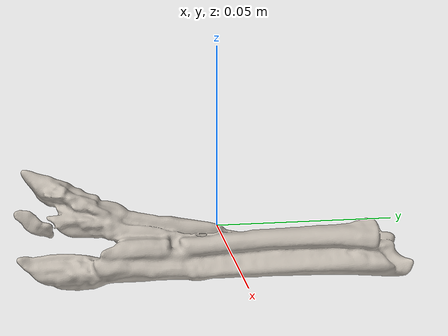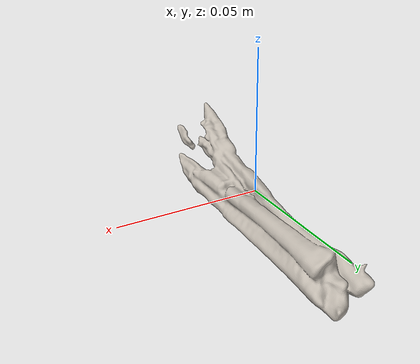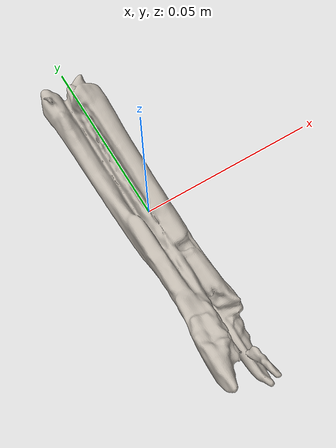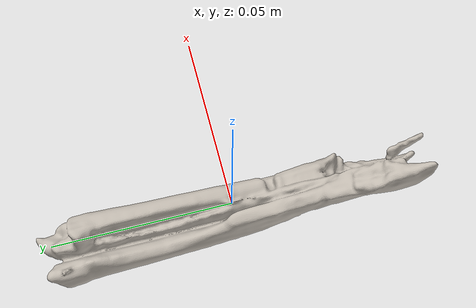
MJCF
<?xml version='1.0' encoding='utf-8'?>
<mujoco model="asparagus_1">
  <asset>
    <texture file="ceramic.png" name="tex-asparagus_1" type="2d" />
    <material name="asparagus_1" reflectance="0.5" texrepeat="1 1" texture="tex-asparagus_1" texuniform="false" />
    <mesh file="visual/model_normalized_0.obj" name="model_normalized_0_vis" scale="0.11000000000000001 0.11000000000000001 0.11000000000000001" refquat="0.7071067811865475 0.0 0.0 0.7071067811865475" />
    <mesh file="collision/model_normalized_collision_13.obj" name="model_normalized_collision_13._coll" scale="0.11000000000000001 0.11000000000000001 0.11000000000000001" refquat="0.7071067811865475 0.0 0.0 0.7071067811865475" />
    <mesh file="collision/model_normalized_collision_15.obj" name="model_normalized_collision_15._coll" scale="0.11000000000000001 0.11000000000000001 0.11000000000000001" refquat="0.7071067811865475 0.0 0.0 0.7071067811865475" />
    <mesh file="collision/model_normalized_collision_10.obj" name="model_normalized_collision_10._coll" scale="0.11000000000000001 0.11000000000000001 0.11000000000000001" refquat="0.7071067811865475 0.0 0.0 0.7071067811865475" />
    <mesh file="collision/model_normalized_collision_26.obj" name="model_normalized_collision_26._coll" scale="0.11000000000000001 0.11000000000000001 0.11000000000000001" refquat="0.7071067811865475 0.0 0.0 0.7071067811865475" />
    <mesh file="collision/model_normalized_collision_25.obj" name="model_normalized_collision_25._coll" scale="0.11000000000000001 0.11000000000000001 0.11000000000000001" refquat="0.7071067811865475 0.0 0.0 0.7071067811865475" />
    <mesh file="collision/model_normalized_collision_5.obj" name="model_normalized_collision_5._coll" scale="0.11000000000000001 0.11000000000000001 0.11000000000000001" refquat="0.7071067811865475 0.0 0.0 0.7071067811865475" />
    <mesh file="collision/model_normalized_collision_31.obj" name="model_normalized_collision_31._coll" scale="0.11000000000000001 0.11000000000000001 0.11000000000000001" refquat="0.7071067811865475 0.0 0.0 0.7071067811865475" />
    <mesh file="collision/model_normalized_collision_3.obj" name="model_normalized_collision_3._coll" scale="0.11000000000000001 0.11000000000000001 0.11000000000000001" refquat="0.7071067811865475 0.0 0.0 0.7071067811865475" />
    <mesh file="collision/model_normalized_collision_14.obj" name="model_normalized_collision_14._coll" scale="0.11000000000000001 0.11000000000000001 0.11000000000000001" refquat="0.7071067811865475 0.0 0.0 0.7071067811865475" />
    <mesh file="collision/model_normalized_collision_28.obj" name="model_normalized_collision_28._coll" scale="0.11000000000000001 0.11000000000000001 0.11000000000000001" refquat="0.7071067811865475 0.0 0.0 0.7071067811865475" />
    <mesh file="collision/model_normalized_collision_11.obj" name="model_normalized_collision_11._coll" scale="0.11000000000000001 0.11000000000000001 0.11000000000000001" refquat="0.7071067811865475 0.0 0.0 0.7071067811865475" />
    <mesh file="collision/model_normalized_collision_29.obj" name="model_normalized_collision_29._coll" scale="0.11000000000000001 0.11000000000000001 0.11000000000000001" refquat="0.7071067811865475 0.0 0.0 0.7071067811865475" />
    <mesh file="collision/model_normalized_collision_24.obj" name="model_normalized_collision_24._coll" scale="0.11000000000000001 0.11000000000000001 0.11000000000000001" refquat="0.7071067811865475 0.0 0.0 0.7071067811865475" />
    <mesh file="collision/model_normalized_collision_1.obj" name="model_normalized_collision_1._coll" scale="0.11000000000000001 0.11000000000000001 0.11000000000000001" refquat="0.7071067811865475 0.0 0.0 0.7071067811865475" />
    <mesh file="collision/model_normalized_collision_0.obj" name="model_normalized_collision_0._coll" scale="0.11000000000000001 0.11000000000000001 0.11000000000000001" refquat="0.7071067811865475 0.0 0.0 0.7071067811865475" />
    <mesh file="collision/model_normalized_collision_27.obj" name="model_normalized_collision_27._coll" scale="0.11000000000000001 0.11000000000000001 0.11000000000000001" refquat="0.7071067811865475 0.0 0.0 0.7071067811865475" />
    <mesh file="collision/model_normalized_collision_9.obj" name="model_normalized_collision_9._coll" scale="0.11000000000000001 0.11000000000000001 0.11000000000000001" refquat="0.7071067811865475 0.0 0.0 0.7071067811865475" />
    <mesh file="collision/model_normalized_collision_19.obj" name="model_normalized_collision_19._coll" scale="0.11000000000000001 0.11000000000000001 0.11000000000000001" refquat="0.7071067811865475 0.0 0.0 0.7071067811865475" />
    <mesh file="collision/model_normalized_collision_21.obj" name="model_normalized_collision_21._coll" scale="0.11000000000000001 0.11000000000000001 0.11000000000000001" refquat="0.7071067811865475 0.0 0.0 0.7071067811865475" />
    <mesh file="collision/model_normalized_collision_30.obj" name="model_normalized_collision_30._coll" scale="0.11000000000000001 0.11000000000000001 0.11000000000000001" refquat="0.7071067811865475 0.0 0.0 0.7071067811865475" />
    <mesh file="collision/model_normalized_collision_20.obj" name="model_normalized_collision_20._coll" scale="0.11000000000000001 0.11000000000000001 0.11000000000000001" refquat="0.7071067811865475 0.0 0.0 0.7071067811865475" />
    <mesh file="collision/model_normalized_collision_2.obj" name="model_normalized_collision_2._coll" scale="0.11000000000000001 0.11000000000000001 0.11000000000000001" refquat="0.7071067811865475 0.0 0.0 0.7071067811865475" />
    <mesh file="collision/model_normalized_collision_7.obj" name="model_normalized_collision_7._coll" scale="0.11000000000000001 0.11000000000000001 0.11000000000000001" refquat="0.7071067811865475 0.0 0.0 0.7071067811865475" />
    <mesh file="collision/model_normalized_collision_22.obj" name="model_normalized_collision_22._coll" scale="0.11000000000000001 0.11000000000000001 0.11000000000000001" refquat="0.7071067811865475 0.0 0.0 0.7071067811865475" />
    <mesh file="collision/model_normalized_collision_16.obj" name="model_normalized_collision_16._coll" scale="0.11000000000000001 0.11000000000000001 0.11000000000000001" refquat="0.7071067811865475 0.0 0.0 0.7071067811865475" />
    <mesh file="collision/model_normalized_collision_8.obj" name="model_normalized_collision_8._coll" scale="0.11000000000000001 0.11000000000000001 0.11000000000000001" refquat="0.7071067811865475 0.0 0.0 0.7071067811865475" />
    <mesh file="collision/model_normalized_collision_6.obj" name="model_normalized_collision_6._coll" scale="0.11000000000000001 0.11000000000000001 0.11000000000000001" refquat="0.7071067811865475 0.0 0.0 0.7071067811865475" />
    <mesh file="collision/model_normalized_collision_18.obj" name="model_normalized_collision_18._coll" scale="0.11000000000000001 0.11000000000000001 0.11000000000000001" refquat="0.7071067811865475 0.0 0.0 0.7071067811865475" />
    <mesh file="collision/model_normalized_collision_17.obj" name="model_normalized_collision_17._coll" scale="0.11000000000000001 0.11000000000000001 0.11000000000000001" refquat="0.7071067811865475 0.0 0.0 0.7071067811865475" />
    <mesh file="collision/model_normalized_collision_12.obj" name="model_normalized_collision_12._coll" scale="0.11000000000000001 0.11000000000000001 0.11000000000000001" refquat="0.7071067811865475 0.0 0.0 0.7071067811865475" />
    <mesh file="collision/model_normalized_collision_4.obj" name="model_normalized_collision_4._coll" scale="0.11000000000000001 0.11000000000000001 0.11000000000000001" refquat="0.7071067811865475 0.0 0.0 0.7071067811865475" />
    <mesh file="collision/model_normalized_collision_23.obj" name="model_normalized_collision_23._coll" scale="0.11000000000000001 0.11000000000000001 0.11000000000000001" refquat="0.7071067811865475 0.0 0.0 0.7071067811865475" />
    <texture type="2d" name="53d22b94be75_Asparagus__3d_asset_texture_kd" file="visual/53d22b94be75_Asparagus__3d_asset_texture_kd.png" />
    <material name="Material_0" texture="53d22b94be75_Asparagus__3d_asset_texture_kd" specular="0.5" shininess="0.5" />
  </asset>
  <default>
    <default class="region">
      <geom group="1" conaffinity="0" contype="0" rgba="0 1 0 0" />
    </default>
  </default>
  <worldbody>
    <body>
      <body name="object">
        <geom solimp="0.998 0.998 0.001" solref="0.001 1" density="100" friction="0.95 0.3 0.1" type="mesh" mesh="model_normalized_0_vis" conaffinity="0" contype="0" group="1" material="Material_0" />
        <geom solimp="0.998 0.998 0.001" solref="0.001 1" density="100" friction="0.95 0.3 0.1" type="mesh" mesh="model_normalized_collision_13._coll" group="0" rgba="0.8 0.8 0.8 0.0" />
        <geom solimp="0.998 0.998 0.001" solref="0.001 1" density="100" friction="0.95 0.3 0.1" type="mesh" mesh="model_normalized_collision_15._coll" group="0" rgba="0.8 0.8 0.8 0.0" />
        <geom solimp="0.998 0.998 0.001" solref="0.001 1" density="100" friction="0.95 0.3 0.1" type="mesh" mesh="model_normalized_collision_10._coll" group="0" rgba="0.8 0.8 0.8 0.0" />
        <geom solimp="0.998 0.998 0.001" solref="0.001 1" density="100" friction="0.95 0.3 0.1" type="mesh" mesh="model_normalized_collision_26._coll" group="0" rgba="0.8 0.8 0.8 0.0" />
        <geom solimp="0.998 0.998 0.001" solref="0.001 1" density="100" friction="0.95 0.3 0.1" type="mesh" mesh="model_normalized_collision_25._coll" group="0" rgba="0.8 0.8 0.8 0.0" />
        <geom solimp="0.998 0.998 0.001" solref="0.001 1" density="100" friction="0.95 0.3 0.1" type="mesh" mesh="model_normalized_collision_5._coll" group="0" rgba="0.8 0.8 0.8 0.0" />
        <geom solimp="0.998 0.998 0.001" solref="0.001 1" density="100" friction="0.95 0.3 0.1" type="mesh" mesh="model_normalized_collision_31._coll" group="0" rgba="0.8 0.8 0.8 0.0" />
        <geom solimp="0.998 0.998 0.001" solref="0.001 1" density="100" friction="0.95 0.3 0.1" type="mesh" mesh="model_normalized_collision_3._coll" group="0" rgba="0.8 0.8 0.8 0.0" />
        <geom solimp="0.998 0.998 0.001" solref="0.001 1" density="100" friction="0.95 0.3 0.1" type="mesh" mesh="model_normalized_collision_14._coll" group="0" rgba="0.8 0.8 0.8 0.0" />
        <geom solimp="0.998 0.998 0.001" solref="0.001 1" density="100" friction="0.95 0.3 0.1" type="mesh" mesh="model_normalized_collision_28._coll" group="0" rgba="0.8 0.8 0.8 0.0" />
        <geom solimp="0.998 0.998 0.001" solref="0.001 1" density="100" friction="0.95 0.3 0.1" type="mesh" mesh="model_normalized_collision_11._coll" group="0" rgba="0.8 0.8 0.8 0.0" />
        <geom solimp="0.998 0.998 0.001" solref="0.001 1" density="100" friction="0.95 0.3 0.1" type="mesh" mesh="model_normalized_collision_29._coll" group="0" rgba="0.8 0.8 0.8 0.0" />
        <geom solimp="0.998 0.998 0.001" solref="0.001 1" density="100" friction="0.95 0.3 0.1" type="mesh" mesh="model_normalized_collision_24._coll" group="0" rgba="0.8 0.8 0.8 0.0" />
        <geom solimp="0.998 0.998 0.001" solref="0.001 1" density="100" friction="0.95 0.3 0.1" type="mesh" mesh="model_normalized_collision_1._coll" group="0" rgba="0.8 0.8 0.8 0.0" />
        <geom solimp="0.998 0.998 0.001" solref="0.001 1" density="100" friction="0.95 0.3 0.1" type="mesh" mesh="model_normalized_collision_0._coll" group="0" rgba="0.8 0.8 0.8 0.0" />
        <geom solimp="0.998 0.998 0.001" solref="0.001 1" density="100" friction="0.95 0.3 0.1" type="mesh" mesh="model_normalized_collision_27._coll" group="0" rgba="0.8 0.8 0.8 0.0" />
        <geom solimp="0.998 0.998 0.001" solref="0.001 1" density="100" friction="0.95 0.3 0.1" type="mesh" mesh="model_normalized_collision_9._coll" group="0" rgba="0.8 0.8 0.8 0.0" />
        <geom solimp="0.998 0.998 0.001" solref="0.001 1" density="100" friction="0.95 0.3 0.1" type="mesh" mesh="model_normalized_collision_19._coll" group="0" rgba="0.8 0.8 0.8 0.0" />
        <geom solimp="0.998 0.998 0.001" solref="0.001 1" density="100" friction="0.95 0.3 0.1" type="mesh" mesh="model_normalized_collision_21._coll" group="0" rgba="0.8 0.8 0.8 0.0" />
        <geom solimp="0.998 0.998 0.001" solref="0.001 1" density="100" friction="0.95 0.3 0.1" type="mesh" mesh="model_normalized_collision_30._coll" group="0" rgba="0.8 0.8 0.8 0.0" />
        <geom solimp="0.998 0.998 0.001" solref="0.001 1" density="100" friction="0.95 0.3 0.1" type="mesh" mesh="model_normalized_collision_20._coll" group="0" rgba="0.8 0.8 0.8 0.0" />
        <geom solimp="0.998 0.998 0.001" solref="0.001 1" density="100" friction="0.95 0.3 0.1" type="mesh" mesh="model_normalized_collision_2._coll" group="0" rgba="0.8 0.8 0.8 0.0" />
        <geom solimp="0.998 0.998 0.001" solref="0.001 1" density="100" friction="0.95 0.3 0.1" type="mesh" mesh="model_normalized_collision_7._coll" group="0" rgba="0.8 0.8 0.8 0.0" />
        <geom solimp="0.998 0.998 0.001" solref="0.001 1" density="100" friction="0.95 0.3 0.1" type="mesh" mesh="model_normalized_collision_22._coll" group="0" rgba="0.8 0.8 0.8 0.0" />
        <geom solimp="0.998 0.998 0.001" solref="0.001 1" density="100" friction="0.95 0.3 0.1" type="mesh" mesh="model_normalized_collision_16._coll" group="0" rgba="0.8 0.8 0.8 0.0" />
        <geom solimp="0.998 0.998 0.001" solref="0.001 1" density="100" friction="0.95 0.3 0.1" type="mesh" mesh="model_normalized_collision_8._coll" group="0" rgba="0.8 0.8 0.8 0.0" />
        <geom solimp="0.998 0.998 0.001" solref="0.001 1" density="100" friction="0.95 0.3 0.1" type="mesh" mesh="model_normalized_collision_6._coll" group="0" rgba="0.8 0.8 0.8 0.0" />
        <geom solimp="0.998 0.998 0.001" solref="0.001 1" density="100" friction="0.95 0.3 0.1" type="mesh" mesh="model_normalized_collision_18._coll" group="0" rgba="0.8 0.8 0.8 0.0" />
        <geom solimp="0.998 0.998 0.001" solref="0.001 1" density="100" friction="0.95 0.3 0.1" type="mesh" mesh="model_normalized_collision_17._coll" group="0" rgba="0.8 0.8 0.8 0.0" />
        <geom solimp="0.998 0.998 0.001" solref="0.001 1" density="100" friction="0.95 0.3 0.1" type="mesh" mesh="model_normalized_collision_12._coll" group="0" rgba="0.8 0.8 0.8 0.0" />
        <geom solimp="0.998 0.998 0.001" solref="0.001 1" density="100" friction="0.95 0.3 0.1" type="mesh" mesh="model_normalized_collision_4._coll" group="0" rgba="0.8 0.8 0.8 0.0" />
        <geom solimp="0.998 0.998 0.001" solref="0.001 1" density="100" friction="0.95 0.3 0.1" type="mesh" mesh="model_normalized_collision_23._coll" group="0" rgba="0.8 0.8 0.8 0.0" />
        <geom class="region" name="reg_bbox" type="box" pos="-0.00024756545000000015 5.500000027636176e-10 -0.00010968044999999996" size="0.010585768600000003 0.05583333580000001 0.016666667050000004" />
      </body>
    <site rgba="0 0 0 0" size="0.005" pos="0 0 -0.016776348" name="bottom_site" /><site rgba="0 0 0 0" size="0.005" pos="0 0 0.016556987" name="top_site" /><site rgba="0 0 0 0" size="0.005" pos="0.055833336 0.055833336 0" name="horizontal_radius_site" /></body>
  </worldbody>
</mujoco>
